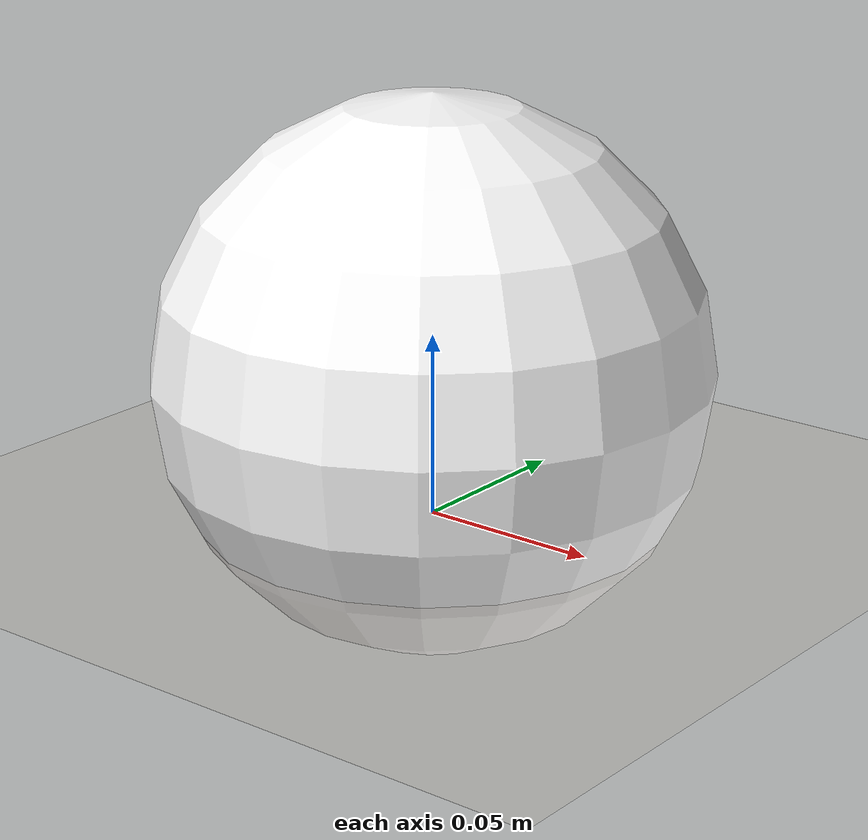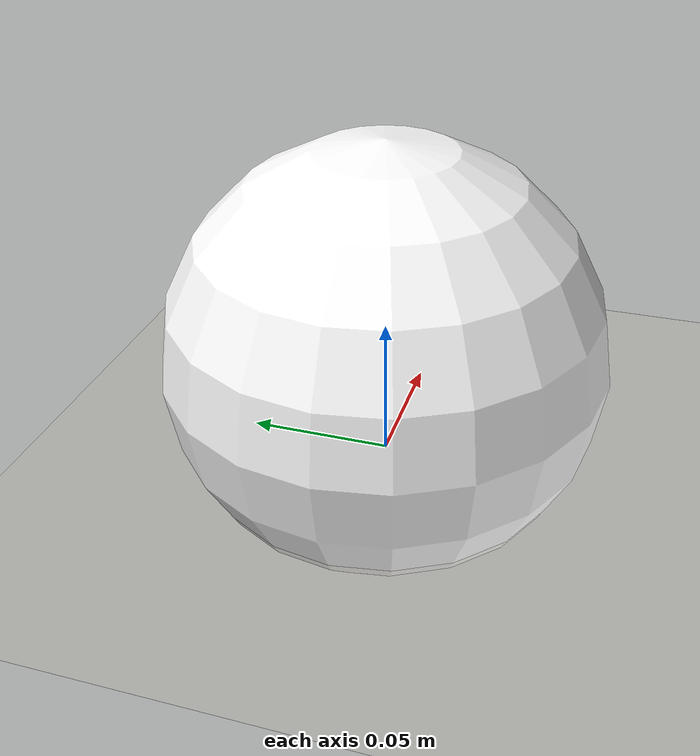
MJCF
<mujoco>
  <compiler angle="radian" assetdir="assets"/>

  <option timestep="0.005" density="1.2" viscosity="0.00002"/>

  <asset>
    <texture name="pitch" file="pitch_nologo_l.png" type="2d"/>
    <material name="pitch" reflectance="0.0" texture="pitch" texrepeat="1 1" texuniform="false"/>
    <texture name="ball" type="cube" fileup="up.png" filedown="down.png" filefront="front.png" fileback="back.png" fileleft="left.png" fileright="right.png"/>
    <material name="ball" texture="ball"/>
  </asset>

  <worldbody>
    <light cutoff="100" diffuse="1 1 1" dir="-0 0 -1.3" directional="true" exponent="1" pos="0 0 1.3" specular=".1 .1 .1"/>
    <geom material="pitch" name="pitch" pos="0 0 0" size="32 24 40" type="plane"/>

    <body name="ball" pos="0 0 0.04">
      <freejoint name="ball-root"/>
      <site name='B-vismarker' pos='0 0 0'/>
      <geom name="ball" pos="0 0 0" size="0.075" mass="0.014" friction="0.8 0.02 0.03" rgba="1 1 1 1" condim="6" priority="1" solref="-5000 -20" type="sphere" material="ball"/>
    </body>
  </worldbody>
</mujoco>
